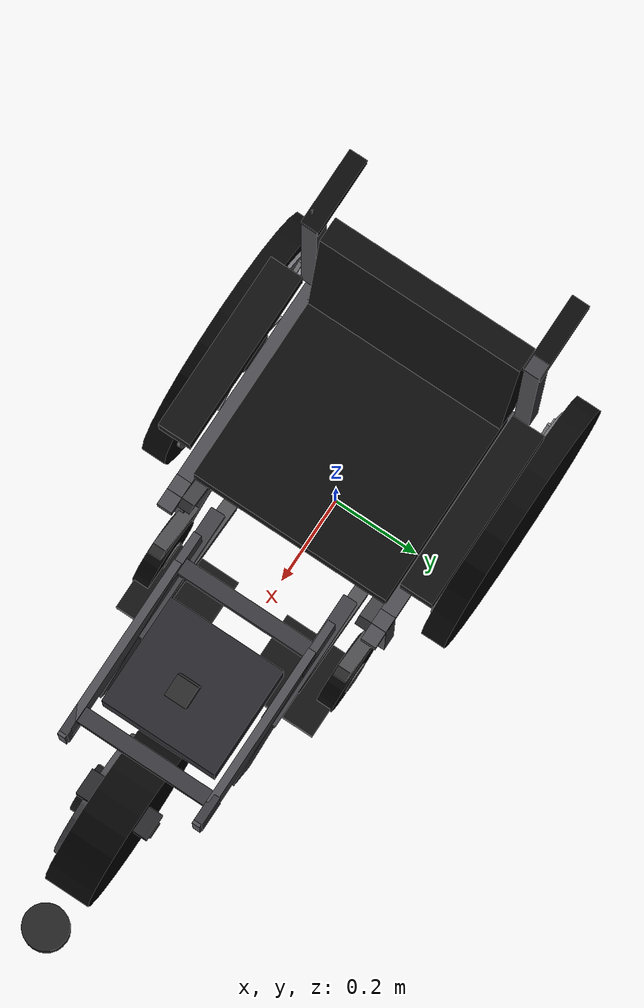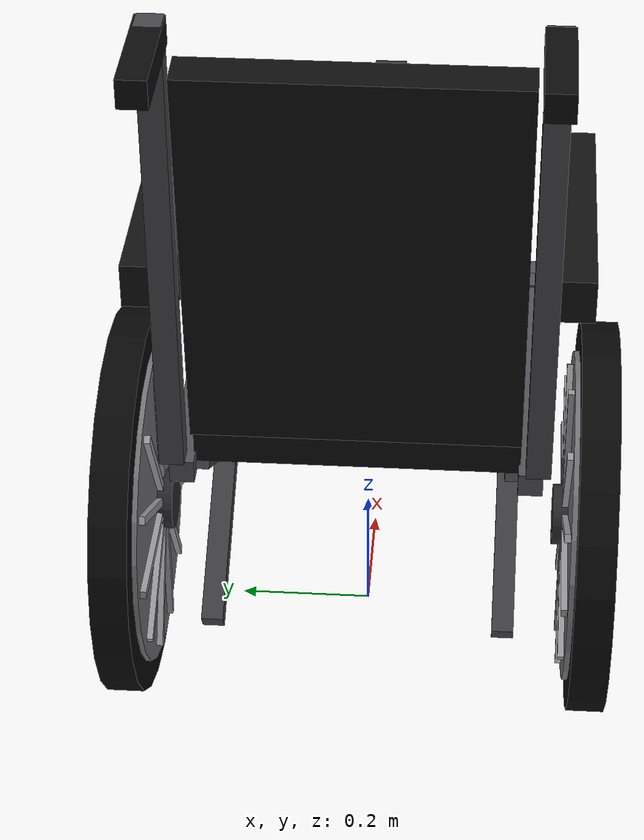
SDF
<?xml version="1.0"?>

<sdf version="1.10">
  <model name="wheelchair">

    <pose>0 0 0 0 0 0</pose>

    <link name="base_link">

      <inertial>
        <pose>-0.05 0 0.40 0 0 0</pose>

        <mass>40.0</mass>

        <inertia>
          <ixx>3.0</ixx>
          <iyy>4.0</iyy>
          <izz>4.0</izz>
          <ixy>0.0</ixy>
          <ixz>0.0</ixz>
          <iyz>0.0</iyz>
        </inertia>
      </inertial>

      <!-- Wheelchair collisions -->

      <collision name="wheelchair_lower_collision">
        <pose>-0.02 0 0.34 0 0 0</pose>

        <geometry>
          <box>
            <size>0.62 0.48 0.10</size>
          </box>
        </geometry>
      </collision>

      <collision name="seat_collision">
        <pose>-0.05 0 0.51 0 0 0</pose>

        <geometry>
          <box>
            <size>0.44 0.46 0.08</size>
          </box>
        </geometry>
      </collision>

      <collision name="backrest_collision">
        <pose>-0.29 0 0.82 0 0 0</pose>

        <geometry>
          <box>
            <size>0.065 0.46 0.58</size>
          </box>
        </geometry>
      </collision>

      <!-- SWAN collision remains simple -->

      <collision name="swan_body_collision">
        <pose>0.52 0 0.40 0 0 0</pose>

        <geometry>
          <box>
            <size>0.38 0.31 0.15</size>
          </box>
        </geometry>
      </collision>

      <collision name="swan_connector_collision">
        <pose>0.32 0 0.35 0 0 0</pose>

        <geometry>
          <box>
            <size>0.24 0.20 0.07</size>
          </box>
        </geometry>
      </collision>

      <!-- Wheelchair seat -->

      <visual name="seat_visual">
        <pose>-0.05 0 0.51 0 0 0</pose>

        <geometry>
          <box>
            <size>0.44 0.46 0.075</size>
          </box>
        </geometry>

        <material>
          <ambient>0.025 0.025 0.025 1</ambient>
          <diffuse>0.055 0.055 0.055 1</diffuse>
        </material>
      </visual>

      <!-- Wheelchair backrest -->

      <visual name="backrest_visual">
        <pose>-0.29 0 0.83 0 -0.07 0</pose>

        <geometry>
          <box>
            <size>0.055 0.46 0.58</size>
          </box>
        </geometry>

        <material>
          <ambient>0.025 0.025 0.025 1</ambient>
          <diffuse>0.055 0.055 0.055 1</diffuse>
        </material>
      </visual>

      <!-- Back posts -->

      <visual name="back_left_post">
        <pose>-0.30 0.255 0.84 0 0 0</pose>

        <geometry>
          <box>
            <size>0.035 0.035 0.68</size>
          </box>
        </geometry>

        <material>
          <ambient>0.15 0.15 0.15 1</ambient>
          <diffuse>0.28 0.28 0.30 1</diffuse>
        </material>
      </visual>

      <visual name="back_right_post">
        <pose>-0.30 -0.255 0.84 0 0 0</pose>

        <geometry>
          <box>
            <size>0.035 0.035 0.68</size>
          </box>
        </geometry>

        <material>
          <ambient>0.15 0.15 0.15 1</ambient>
          <diffuse>0.28 0.28 0.30 1</diffuse>
        </material>
      </visual>

      <!-- Push handles -->

      <visual name="left_push_handle">
        <pose>-0.37 0.255 1.16 0 0 0</pose>

        <geometry>
          <box>
            <size>0.17 0.04 0.04</size>
          </box>
        </geometry>

        <material>
          <ambient>0.025 0.025 0.025 1</ambient>
          <diffuse>0.05 0.05 0.05 1</diffuse>
        </material>
      </visual>

      <visual name="right_push_handle">
        <pose>-0.37 -0.255 1.16 0 0 0</pose>

        <geometry>
          <box>
            <size>0.17 0.04 0.04</size>
          </box>
        </geometry>

        <material>
          <ambient>0.025 0.025 0.025 1</ambient>
          <diffuse>0.05 0.05 0.05 1</diffuse>
        </material>
      </visual>

      <!-- Armrests -->

      <visual name="left_armrest">
        <pose>-0.05 0.285 0.75 0 0 0</pose>

        <geometry>
          <box>
            <size>0.40 0.075 0.065</size>
          </box>
        </geometry>

        <material>
          <ambient>0.03 0.03 0.03 1</ambient>
          <diffuse>0.07 0.07 0.07 1</diffuse>
        </material>
      </visual>

      <visual name="right_armrest">
        <pose>-0.05 -0.285 0.75 0 0 0</pose>

        <geometry>
          <box>
            <size>0.40 0.075 0.065</size>
          </box>
        </geometry>

        <material>
          <ambient>0.03 0.03 0.03 1</ambient>
          <diffuse>0.07 0.07 0.07 1</diffuse>
        </material>
      </visual>

      <visual name="left_armrest_support">
        <pose>0.08 0.285 0.64 0 0 0</pose>

        <geometry>
          <box>
            <size>0.035 0.035 0.24</size>
          </box>
        </geometry>

        <material>
          <ambient>0.12 0.12 0.12 1</ambient>
          <diffuse>0.25 0.25 0.26 1</diffuse>
        </material>
      </visual>

      <visual name="right_armrest_support">
        <pose>0.08 -0.285 0.64 0 0 0</pose>

        <geometry>
          <box>
            <size>0.035 0.035 0.24</size>
          </box>
        </geometry>

        <material>
          <ambient>0.12 0.12 0.12 1</ambient>
          <diffuse>0.25 0.25 0.26 1</diffuse>
        </material>
      </visual>

      <!-- Wheelchair frame -->

      <visual name="left_upper_frame">
        <pose>-0.02 0.245 0.47 0 0 0</pose>

        <geometry>
          <box>
            <size>0.55 0.035 0.035</size>
          </box>
        </geometry>

        <material>
          <ambient>0.18 0.18 0.18 1</ambient>
          <diffuse>0.32 0.32 0.34 1</diffuse>
        </material>
      </visual>

      <visual name="right_upper_frame">
        <pose>-0.02 -0.245 0.47 0 0 0</pose>

        <geometry>
          <box>
            <size>0.55 0.035 0.035</size>
          </box>
        </geometry>

        <material>
          <ambient>0.18 0.18 0.18 1</ambient>
          <diffuse>0.32 0.32 0.34 1</diffuse>
        </material>
      </visual>

      <visual name="left_front_frame">
        <pose>0.20 0.245 0.32 0 0 0</pose>

        <geometry>
          <box>
            <size>0.035 0.035 0.34</size>
          </box>
        </geometry>

        <material>
          <ambient>0.18 0.18 0.18 1</ambient>
          <diffuse>0.32 0.32 0.34 1</diffuse>
        </material>
      </visual>

      <visual name="right_front_frame">
        <pose>0.20 -0.245 0.32 0 0 0</pose>

        <geometry>
          <box>
            <size>0.035 0.035 0.34</size>
          </box>
        </geometry>

        <material>
          <ambient>0.18 0.18 0.18 1</ambient>
          <diffuse>0.32 0.32 0.34 1</diffuse>
        </material>
      </visual>

      <!-- Wheelchair folding braces -->

      <visual name="left_cross_frame_1">
        <pose>-0.02 0.225 0.32 0 0.56 0</pose>

        <geometry>
          <box>
            <size>0.58 0.032 0.032</size>
          </box>
        </geometry>

        <material>
          <ambient>0.10 0.10 0.10 1</ambient>
          <diffuse>0.24 0.24 0.25 1</diffuse>
        </material>
      </visual>

      <visual name="left_cross_frame_2">
        <pose>-0.02 0.215 0.32 0 -0.56 0</pose>

        <geometry>
          <box>
            <size>0.58 0.032 0.032</size>
          </box>
        </geometry>

        <material>
          <ambient>0.10 0.10 0.10 1</ambient>
          <diffuse>0.24 0.24 0.25 1</diffuse>
        </material>
      </visual>

      <visual name="right_cross_frame_1">
        <pose>-0.02 -0.225 0.32 0 0.56 0</pose>

        <geometry>
          <box>
            <size>0.58 0.032 0.032</size>
          </box>
        </geometry>

        <material>
          <ambient>0.10 0.10 0.10 1</ambient>
          <diffuse>0.24 0.24 0.25 1</diffuse>
        </material>
      </visual>

      <visual name="right_cross_frame_2">
        <pose>-0.02 -0.215 0.32 0 -0.56 0</pose>

        <geometry>
          <box>
            <size>0.58 0.032 0.032</size>
          </box>
        </geometry>

        <material>
          <ambient>0.10 0.10 0.10 1</ambient>
          <diffuse>0.24 0.24 0.25 1</diffuse>
        </material>
      </visual>

      <!-- Footrests -->

      <visual name="left_footrest_support">
        <pose>0.27 0.16 0.27 0 -0.40 0</pose>

        <geometry>
          <box>
            <size>0.27 0.032 0.032</size>
          </box>
        </geometry>

        <material>
          <ambient>0.15 0.15 0.15 1</ambient>
          <diffuse>0.30 0.30 0.31 1</diffuse>
        </material>
      </visual>

      <visual name="right_footrest_support">
        <pose>0.27 -0.16 0.27 0 -0.40 0</pose>

        <geometry>
          <box>
            <size>0.27 0.032 0.032</size>
          </box>
        </geometry>

        <material>
          <ambient>0.15 0.15 0.15 1</ambient>
          <diffuse>0.30 0.30 0.31 1</diffuse>
        </material>
      </visual>

      <visual name="left_footplate">
        <pose>0.36 0.15 0.18 0 0 0</pose>

        <geometry>
          <box>
            <size>0.18 0.18 0.025</size>
          </box>
        </geometry>

        <material>
          <ambient>0.03 0.03 0.03 1</ambient>
          <diffuse>0.08 0.08 0.08 1</diffuse>
        </material>
      </visual>

      <visual name="right_footplate">
        <pose>0.36 -0.15 0.18 0 0 0</pose>

        <geometry>
          <box>
            <size>0.18 0.18 0.025</size>
          </box>
        </geometry>

        <material>
          <ambient>0.03 0.03 0.03 1</ambient>
          <diffuse>0.08 0.08 0.08 1</diffuse>
        </material>
      </visual>

      <!-- Folded wheelchair casters -->

      <visual name="folded_left_caster_fork">
        <pose>0.25 0.225 0.24 0 -0.70 0</pose>

        <geometry>
          <box>
            <size>0.18 0.030 0.030</size>
          </box>
        </geometry>

        <material>
          <ambient>0.13 0.13 0.13 1</ambient>
          <diffuse>0.28 0.28 0.29 1</diffuse>
        </material>
      </visual>

      <visual name="folded_left_caster_tire">
        <pose>0.30 0.225 0.175 1.5708 0 0</pose>

        <geometry>
          <cylinder>
            <radius>0.085</radius>
            <length>0.038</length>
          </cylinder>
        </geometry>

        <material>
          <ambient>0.015 0.015 0.015 1</ambient>
          <diffuse>0.035 0.035 0.035 1</diffuse>
        </material>
      </visual>

      <visual name="folded_left_caster_hub">
        <pose>0.30 0.225 0.175 1.5708 0 0</pose>

        <geometry>
          <cylinder>
            <radius>0.035</radius>
            <length>0.045</length>
          </cylinder>
        </geometry>

        <material>
          <ambient>0.20 0.20 0.20 1</ambient>
          <diffuse>0.35 0.35 0.36 1</diffuse>
        </material>
      </visual>

      <visual name="folded_right_caster_fork">
        <pose>0.25 -0.225 0.24 0 -0.70 0</pose>

        <geometry>
          <box>
            <size>0.18 0.030 0.030</size>
          </box>
        </geometry>

        <material>
          <ambient>0.13 0.13 0.13 1</ambient>
          <diffuse>0.28 0.28 0.29 1</diffuse>
        </material>
      </visual>

      <visual name="folded_right_caster_tire">
        <pose>0.30 -0.225 0.175 1.5708 0 0</pose>

        <geometry>
          <cylinder>
            <radius>0.085</radius>
            <length>0.038</length>
          </cylinder>
        </geometry>

        <material>
          <ambient>0.015 0.015 0.015 1</ambient>
          <diffuse>0.035 0.035 0.035 1</diffuse>
        </material>
      </visual>

      <visual name="folded_right_caster_hub">
        <pose>0.30 -0.225 0.175 1.5708 0 0</pose>

        <geometry>
          <cylinder>
            <radius>0.035</radius>
            <length>0.045</length>
          </cylinder>
        </geometry>

        <material>
          <ambient>0.20 0.20 0.20 1</ambient>
          <diffuse>0.35 0.35 0.36 1</diffuse>
        </material>
      </visual>

      <!-- SWAN connection arms -->

      <visual name="swan_left_connection_arm">
        <pose>0.34 0.16 0.37 0 0 0</pose>

        <geometry>
          <box>
            <size>0.30 0.032 0.040</size>
          </box>
        </geometry>

        <material>
          <ambient>0.11 0.11 0.115 1</ambient>
          <diffuse>0.27 0.27 0.29 1</diffuse>
        </material>
      </visual>

      <visual name="swan_right_connection_arm">
        <pose>0.34 -0.16 0.37 0 0 0</pose>

        <geometry>
          <box>
            <size>0.30 0.032 0.040</size>
          </box>
        </geometry>

        <material>
          <ambient>0.11 0.11 0.115 1</ambient>
          <diffuse>0.27 0.27 0.29 1</diffuse>
        </material>
      </visual>

      <!-- SWAN upper side plates -->

      <visual name="swan_left_upper_plate">
        <pose>0.54 0.161 0.445 0 0 0</pose>

        <geometry>
          <box>
            <size>0.42 0.018 0.13</size>
          </box>
        </geometry>

        <material>
          <ambient>0.15 0.15 0.155 1</ambient>
          <diffuse>0.33 0.33 0.35 1</diffuse>
          <specular>0.18 0.18 0.18 1</specular>
        </material>
      </visual>

      <visual name="swan_right_upper_plate">
        <pose>0.54 -0.161 0.445 0 0 0</pose>

        <geometry>
          <box>
            <size>0.42 0.018 0.13</size>
          </box>
        </geometry>

        <material>
          <ambient>0.15 0.15 0.155 1</ambient>
          <diffuse>0.33 0.33 0.35 1</diffuse>
          <specular>0.18 0.18 0.18 1</specular>
        </material>
      </visual>

      <!-- SWAN diagonal lower plates -->

      <visual name="swan_left_diagonal_plate">
        <pose>0.47 0.161 0.345 0 0.55 0</pose>

        <geometry>
          <box>
            <size>0.31 0.018 0.105</size>
          </box>
        </geometry>

        <material>
          <ambient>0.13 0.13 0.135 1</ambient>
          <diffuse>0.30 0.30 0.32 1</diffuse>
          <specular>0.15 0.15 0.15 1</specular>
        </material>
      </visual>

      <visual name="swan_right_diagonal_plate">
        <pose>0.47 -0.161 0.345 0 0.55 0</pose>

        <geometry>
          <box>
            <size>0.31 0.018 0.105</size>
          </box>
        </geometry>

        <material>
          <ambient>0.13 0.13 0.135 1</ambient>
          <diffuse>0.30 0.30 0.32 1</diffuse>
          <specular>0.15 0.15 0.15 1</specular>
        </material>
      </visual>

      <!-- SWAN rear side plates -->

      <visual name="swan_left_rear_plate">
        <pose>0.32 0.161 0.405 0 0 0</pose>

        <geometry>
          <box>
            <size>0.12 0.018 0.17</size>
          </box>
        </geometry>

        <material>
          <ambient>0.14 0.14 0.145 1</ambient>
          <diffuse>0.31 0.31 0.33 1</diffuse>
        </material>
      </visual>

      <visual name="swan_right_rear_plate">
        <pose>0.32 -0.161 0.405 0 0 0</pose>

        <geometry>
          <box>
            <size>0.12 0.018 0.17</size>
          </box>
        </geometry>

        <material>
          <ambient>0.14 0.14 0.145 1</ambient>
          <diffuse>0.31 0.31 0.33 1</diffuse>
        </material>
      </visual>

      <!-- SWAN front short plates -->

      <visual name="swan_left_front_plate">
        <pose>0.71 0.161 0.43 0 0 0</pose>

        <geometry>
          <box>
            <size>0.065 0.018 0.16</size>
          </box>
        </geometry>

        <material>
          <ambient>0.11 0.11 0.115 1</ambient>
          <diffuse>0.25 0.25 0.27 1</diffuse>
        </material>
      </visual>

      <visual name="swan_right_front_plate">
        <pose>0.71 -0.161 0.43 0 0 0</pose>

        <geometry>
          <box>
            <size>0.065 0.018 0.16</size>
          </box>
        </geometry>

        <material>
          <ambient>0.11 0.11 0.115 1</ambient>
          <diffuse>0.25 0.25 0.27 1</diffuse>
        </material>
      </visual>

      <!-- SWAN small center enclosure -->

      <visual name="swan_center_box">
        <pose>0.52 0 0.435 0 0 0</pose>

        <geometry>
          <box>
            <size>0.25 0.27 0.11</size>
          </box>
        </geometry>

        <material>
          <ambient>0.075 0.075 0.08 1</ambient>
          <diffuse>0.17 0.17 0.19 1</diffuse>
          <specular>0.12 0.12 0.12 1</specular>
        </material>
      </visual>

      <!-- SWAN front cross member -->

      <visual name="swan_front_cross_member">
        <pose>0.69 0 0.48 0 0 0</pose>

        <geometry>
          <box>
            <size>0.035 0.33 0.035</size>
          </box>
        </geometry>

        <material>
          <ambient>0.10 0.10 0.105 1</ambient>
          <diffuse>0.24 0.24 0.26 1</diffuse>
        </material>
      </visual>

      <!-- SWAN rear cross member -->

      <visual name="swan_rear_cross_member">
        <pose>0.33 0 0.46 0 0 0</pose>

        <geometry>
          <box>
            <size>0.035 0.33 0.035</size>
          </box>
        </geometry>

        <material>
          <ambient>0.10 0.10 0.105 1</ambient>
          <diffuse>0.24 0.24 0.26 1</diffuse>
        </material>
      </visual>

    </link>

    <!-- Left passive rear wheel -->

    <link name="left_drive_wheel">

      <pose>-0.13 0.34 0.29 1.5708 0 0</pose>

      <inertial>
        <mass>6.0</mass>

        <inertia>
          <ixx>0.13</ixx>
          <iyy>0.25</iyy>
          <izz>0.13</izz>
          <ixy>0</ixy>
          <ixz>0</ixz>
          <iyz>0</iyz>
        </inertia>
      </inertial>

      <collision name="left_rear_wheel_collision">

        <geometry>
          <cylinder>
            <radius>0.29</radius>
            <length>0.055</length>
          </cylinder>
        </geometry>

        <surface>
          <friction>
            <ode>
              <mu>0.70</mu>
              <mu2>0.45</mu2>
            </ode>
          </friction>
        </surface>

      </collision>

      <visual name="left_tire">

        <geometry>
          <cylinder>
            <radius>0.29</radius>
            <length>0.055</length>
          </cylinder>
        </geometry>

        <material>
          <ambient>0.012 0.012 0.012 1</ambient>
          <diffuse>0.03 0.03 0.03 1</diffuse>
        </material>

      </visual>

      <visual name="left_rim">
        <pose>0 0 0.030 0 0 0</pose>

        <geometry>
          <cylinder>
            <radius>0.245</radius>
            <length>0.010</length>
          </cylinder>
        </geometry>

        <material>
          <ambient>0.22 0.22 0.22 1</ambient>
          <diffuse>0.45 0.45 0.47 1</diffuse>
          <specular>0.35 0.35 0.35 1</specular>
        </material>

      </visual>

      <visual name="left_hub">
        <pose>0 0 0.040 0 0 0</pose>

        <geometry>
          <cylinder>
            <radius>0.045</radius>
            <length>0.035</length>
          </cylinder>
        </geometry>

        <material>
          <ambient>0.08 0.08 0.08 1</ambient>
          <diffuse>0.16 0.16 0.17 1</diffuse>
        </material>

      </visual>

      <visual name="left_spoke_0">
        <pose>0 0 0.038 0 0 0</pose>

        <geometry>
          <box>
            <size>0.45 0.012 0.012</size>
          </box>
        </geometry>

        <material>
          <ambient>0.40 0.40 0.40 1</ambient>
          <diffuse>0.60 0.60 0.62 1</diffuse>
        </material>
      </visual>

      <visual name="left_spoke_30">
        <pose>0 0 0.038 0 0 0.5236</pose>

        <geometry>
          <box>
            <size>0.45 0.012 0.012</size>
          </box>
        </geometry>

        <material>
          <ambient>0.40 0.40 0.40 1</ambient>
          <diffuse>0.60 0.60 0.62 1</diffuse>
        </material>
      </visual>

      <visual name="left_spoke_60">
        <pose>0 0 0.038 0 0 1.0472</pose>

        <geometry>
          <box>
            <size>0.45 0.012 0.012</size>
          </box>
        </geometry>

        <material>
          <ambient>0.40 0.40 0.40 1</ambient>
          <diffuse>0.60 0.60 0.62 1</diffuse>
        </material>
      </visual>

      <visual name="left_spoke_90">
        <pose>0 0 0.038 0 0 1.5708</pose>

        <geometry>
          <box>
            <size>0.45 0.012 0.012</size>
          </box>
        </geometry>

        <material>
          <ambient>0.40 0.40 0.40 1</ambient>
          <diffuse>0.60 0.60 0.62 1</diffuse>
        </material>
      </visual>

      <visual name="left_spoke_120">
        <pose>0 0 0.038 0 0 2.0944</pose>

        <geometry>
          <box>
            <size>0.45 0.012 0.012</size>
          </box>
        </geometry>

        <material>
          <ambient>0.40 0.40 0.40 1</ambient>
          <diffuse>0.60 0.60 0.62 1</diffuse>
        </material>
      </visual>

      <visual name="left_spoke_150">
        <pose>0 0 0.038 0 0 2.6180</pose>

        <geometry>
          <box>
            <size>0.45 0.012 0.012</size>
          </box>
        </geometry>

        <material>
          <ambient>0.40 0.40 0.40 1</ambient>
          <diffuse>0.60 0.60 0.62 1</diffuse>
        </material>
      </visual>

    </link>

    <joint name="left_drive_wheel_joint" type="revolute">

      <parent>base_link</parent>
      <child>left_drive_wheel</child>

      <axis>

        <xyz expressed_in="__model__">0 1 0</xyz>

        <limit>
          <lower>-1e16</lower>
          <upper>1e16</upper>
          <effort>50</effort>
          <velocity>30</velocity>
        </limit>

        <dynamics>
          <damping>0.025</damping>
          <friction>0.0</friction>
        </dynamics>

      </axis>

    </joint>

    <!-- Right passive rear wheel -->

    <link name="right_drive_wheel">

      <pose>-0.13 -0.34 0.29 1.5708 0 0</pose>

      <inertial>
        <mass>6.0</mass>

        <inertia>
          <ixx>0.13</ixx>
          <iyy>0.25</iyy>
          <izz>0.13</izz>
          <ixy>0</ixy>
          <ixz>0</ixz>
          <iyz>0</iyz>
        </inertia>
      </inertial>

      <collision name="right_rear_wheel_collision">

        <geometry>
          <cylinder>
            <radius>0.29</radius>
            <length>0.055</length>
          </cylinder>
        </geometry>

        <surface>
          <friction>
            <ode>
              <mu>0.70</mu>
              <mu2>0.45</mu2>
            </ode>
          </friction>
        </surface>

      </collision>

      <visual name="right_tire">

        <geometry>
          <cylinder>
            <radius>0.29</radius>
            <length>0.055</length>
          </cylinder>
        </geometry>

        <material>
          <ambient>0.012 0.012 0.012 1</ambient>
          <diffuse>0.03 0.03 0.03 1</diffuse>
        </material>

      </visual>

      <visual name="right_rim">
        <pose>0 0 -0.030 0 0 0</pose>

        <geometry>
          <cylinder>
            <radius>0.245</radius>
            <length>0.010</length>
          </cylinder>
        </geometry>

        <material>
          <ambient>0.22 0.22 0.22 1</ambient>
          <diffuse>0.45 0.45 0.47 1</diffuse>
          <specular>0.35 0.35 0.35 1</specular>
        </material>

      </visual>

      <visual name="right_hub">
        <pose>0 0 -0.040 0 0 0</pose>

        <geometry>
          <cylinder>
            <radius>0.045</radius>
            <length>0.035</length>
          </cylinder>
        </geometry>

        <material>
          <ambient>0.08 0.08 0.08 1</ambient>
          <diffuse>0.16 0.16 0.17 1</diffuse>
        </material>

      </visual>

      <visual name="right_spoke_0">
        <pose>0 0 -0.038 0 0 0</pose>

        <geometry>
          <box>
            <size>0.45 0.012 0.012</size>
          </box>
        </geometry>

        <material>
          <ambient>0.40 0.40 0.40 1</ambient>
          <diffuse>0.60 0.60 0.62 1</diffuse>
        </material>
      </visual>

      <visual name="right_spoke_30">
        <pose>0 0 -0.038 0 0 0.5236</pose>

        <geometry>
          <box>
            <size>0.45 0.012 0.012</size>
          </box>
        </geometry>

        <material>
          <ambient>0.40 0.40 0.40 1</ambient>
          <diffuse>0.60 0.60 0.62 1</diffuse>
        </material>
      </visual>

      <visual name="right_spoke_60">
        <pose>0 0 -0.038 0 0 1.0472</pose>

        <geometry>
          <box>
            <size>0.45 0.012 0.012</size>
          </box>
        </geometry>

        <material>
          <ambient>0.40 0.40 0.40 1</ambient>
          <diffuse>0.60 0.60 0.62 1</diffuse>
        </material>
      </visual>

      <visual name="right_spoke_90">
        <pose>0 0 -0.038 0 0 1.5708</pose>

        <geometry>
          <box>
            <size>0.45 0.012 0.012</size>
          </box>
        </geometry>

        <material>
          <ambient>0.40 0.40 0.40 1</ambient>
          <diffuse>0.60 0.60 0.62 1</diffuse>
        </material>
      </visual>

      <visual name="right_spoke_120">
        <pose>0 0 -0.038 0 0 2.0944</pose>

        <geometry>
          <box>
            <size>0.45 0.012 0.012</size>
          </box>
        </geometry>

        <material>
          <ambient>0.40 0.40 0.40 1</ambient>
          <diffuse>0.60 0.60 0.62 1</diffuse>
        </material>
      </visual>

      <visual name="right_spoke_150">
        <pose>0 0 -0.038 0 0 2.6180</pose>

        <geometry>
          <box>
            <size>0.45 0.012 0.012</size>
          </box>
        </geometry>

        <material>
          <ambient>0.40 0.40 0.40 1</ambient>
          <diffuse>0.60 0.60 0.62 1</diffuse>
        </material>
      </visual>

    </link>

    <joint name="right_drive_wheel_joint" type="revolute">

      <parent>base_link</parent>
      <child>right_drive_wheel</child>

      <axis>

        <xyz expressed_in="__model__">0 1 0</xyz>

        <limit>
          <lower>-1e16</lower>
          <upper>1e16</upper>
          <effort>50</effort>
          <velocity>30</velocity>
        </limit>

        <dynamics>
          <damping>0.025</damping>
          <friction>0.0</friction>
        </dynamics>

      </axis>

    </joint>

    <!-- SWAN steering fork -->

    <link name="swan_steering_fork">

      <pose>0.79 0 0.34 0 0 0</pose>

      <inertial>
        <mass>1.5</mass>

        <inertia>
          <ixx>0.018</ixx>
          <iyy>0.018</iyy>
          <izz>0.014</izz>
          <ixy>0</ixy>
          <ixz>0</ixz>
          <iyz>0</iyz>
        </inertia>
      </inertial>

      <!-- No tall steering tube visual -->

      <visual name="fork_crown">
        <pose>0 0 -0.015 0 0 0</pose>

        <geometry>
          <box>
            <size>0.060 0.17 0.040</size>
          </box>
        </geometry>

        <material>
          <ambient>0.07 0.07 0.075 1</ambient>
          <diffuse>0.17 0.17 0.18 1</diffuse>
        </material>
      </visual>

      <visual name="left_fork_leg">
        <pose>-0.005 0.065 -0.105 0 0 0</pose>

        <geometry>
          <box>
            <size>0.035 0.028 0.18</size>
          </box>
        </geometry>

        <material>
          <ambient>0.08 0.08 0.085 1</ambient>
          <diffuse>0.19 0.19 0.20 1</diffuse>
        </material>
      </visual>

      <visual name="right_fork_leg">
        <pose>-0.005 -0.065 -0.105 0 0 0</pose>

        <geometry>
          <box>
            <size>0.035 0.028 0.18</size>
          </box>
        </geometry>

        <material>
          <ambient>0.08 0.08 0.085 1</ambient>
          <diffuse>0.19 0.19 0.20 1</diffuse>
        </material>
      </visual>

    </link>

    <joint name="front_steering_joint" type="revolute">

      <parent>base_link</parent>
      <child>swan_steering_fork</child>

      <axis>

        <xyz expressed_in="__model__">0 0 1</xyz>

        <limit>
          <lower>-1.5708</lower>
          <upper>1.5708</upper>
          <effort>150</effort>
          <velocity>4.0</velocity>
        </limit>

        <dynamics>
          <damping>0.8</damping>
          <friction>0.10</friction>
        </dynamics>

      </axis>

    </joint>

    <!-- SWAN drive wheel -->

    <link name="front_drive_wheel">

      <pose>0.79 0 0.18 1.5708 0 0</pose>

      <inertial>
        <mass>7.0</mass>

        <inertia>
          <ixx>0.145</ixx>
          <iyy>0.280</iyy>
          <izz>0.145</izz>
          <ixy>0</ixy>
          <ixz>0</ixz>
          <iyz>0</iyz>
        </inertia>
      </inertial>

      <collision name="front_drive_wheel_collision">

        <geometry>
          <cylinder>
            <radius>0.20</radius>
            <length>0.105</length>
          </cylinder>
        </geometry>

        <surface>
          <friction>
            <ode>
              <mu>1.60</mu>
              <mu2>1.30</mu2>
            </ode>
          </friction>
        </surface>

      </collision>

      <visual name="front_tire">

        <geometry>
          <cylinder>
            <radius>0.20</radius>
            <length>0.105</length>
          </cylinder>
        </geometry>

        <material>
          <ambient>0.010 0.010 0.010 1</ambient>
          <diffuse>0.025 0.025 0.025 1</diffuse>
        </material>

      </visual>

      <visual name="front_motor_rim">
        <pose>0 0 0.058 0 0 0</pose>

        <geometry>
          <cylinder>
            <radius>0.145</radius>
            <length>0.020</length>
          </cylinder>
        </geometry>

        <material>
          <ambient>0.13 0.13 0.13 1</ambient>
          <diffuse>0.28 0.28 0.30 1</diffuse>
          <specular>0.20 0.20 0.20 1</specular>
        </material>

      </visual>

      <visual name="front_motor_hub">
        <pose>0 0 0.072 0 0 0</pose>

        <geometry>
          <cylinder>
            <radius>0.055</radius>
            <length>0.035</length>
          </cylinder>
        </geometry>

        <material>
          <ambient>0.04 0.04 0.04 1</ambient>
          <diffuse>0.09 0.09 0.10 1</diffuse>
        </material>

      </visual>

    </link>

    <joint name="front_drive_wheel_joint" type="revolute">

      <parent>swan_steering_fork</parent>
      <child>front_drive_wheel</child>

      <axis>

        <xyz expressed_in="swan_steering_fork">0 1 0</xyz>

        <limit>
          <lower>-1e16</lower>
          <upper>1e16</upper>
          <effort>300</effort>
          <velocity>35</velocity>
        </limit>

        <dynamics>
          <damping>0.03</damping>
          <friction>0.0</friction>
        </dynamics>

      </axis>

    </joint>

    <!-- LiDAR -->

    <link name="lidar_link">

      <pose>1.07 0 0.10 0 0 0</pose>

      <inertial>
        <mass>0.5</mass>

        <inertia>
          <ixx>0.001</ixx>
          <iyy>0.001</iyy>
          <izz>0.001</izz>
          <ixy>0.0</ixy>
          <ixz>0.0</ixz>
          <iyz>0.0</iyz>
        </inertia>
      </inertial>

      <collision name="lidar_collision">

        <geometry>
          <cylinder>
            <radius>0.05</radius>
            <length>0.06</length>
          </cylinder>
        </geometry>

      </collision>

      <visual name="lidar_visual">

        <geometry>
          <cylinder>
            <radius>0.05</radius>
            <length>0.06</length>
          </cylinder>
        </geometry>

        <material>
          <ambient>0.05 0.05 0.05 1</ambient>
          <diffuse>0.15 0.15 0.15 1</diffuse>
        </material>

      </visual>

      <sensor name="lidar_sensor" type="gpu_lidar">

        <pose>0 0 0.03 0 0 0</pose>

        <topic>/model/wheelchair/scan</topic>

        <update_rate>10</update_rate>
        <always_on>true</always_on>
        <visualize>true</visualize>

        <lidar>

          <scan>
            <horizontal>
              <samples>720</samples>
              <resolution>1</resolution>
              <min_angle>-3.14159265</min_angle>
              <max_angle>3.14159265</max_angle>
            </horizontal>
          </scan>

          <range>
            <min>0.12</min>
            <max>12.0</max>
            <resolution>0.01</resolution>
          </range>

          <noise>
            <type>gaussian</type>
            <mean>0.0</mean>
            <stddev>0.01</stddev>
          </noise>

        </lidar>

      </sensor>

    </link>

    <joint name="lidar_joint" type="fixed">
      <parent>base_link</parent>
      <child>lidar_link</child>
    </joint>

    <!-- Camera -->

    <link name="camera_link">

      <pose>0.55 0 0.64 0 0.17 0</pose>

      <inertial>
        <mass>0.1</mass>

        <inertia>
          <ixx>0.0001</ixx>
          <iyy>0.0001</iyy>
          <izz>0.0001</izz>
          <ixy>0.0</ixy>
          <ixz>0.0</ixz>
          <iyz>0.0</iyz>
        </inertia>
      </inertial>

      <visual name="camera_visual">

        <geometry>
          <box>
            <size>0.05 0.05 0.05</size>
          </box>
        </geometry>

        <material>
          <ambient>0.1 0.1 0.1 1</ambient>
          <diffuse>0.2 0.2 0.2 1</diffuse>
        </material>

      </visual>

      <sensor name="camera_sensor" type="camera">

        <topic>/camera</topic>

        <always_on>true</always_on>
        <update_rate>10.0</update_rate>
        <visualize>false</visualize>

        <camera>

          <horizontal_fov>1.047</horizontal_fov>

          <image>
            <width>320</width>
            <height>240</height>
            <format>R8G8B8</format>
          </image>

          <clip>
            <near>0.1</near>
            <far>100</far>
          </clip>

        </camera>

      </sensor>

    </link>

    <joint name="camera_joint" type="fixed">
      <parent>base_link</parent>
      <child>camera_link</child>
    </joint>

    <!-- Odometry publisher -->
    <plugin
      filename="gz-sim-odometry-publisher-system"
      name="gz::sim::systems::OdometryPublisher">

      <odom_frame>odom</odom_frame>
      <robot_base_frame>base_link</robot_base_frame>

      <odom_topic>/model/wheelchair/odometry</odom_topic>
      <tf_topic>/model/wheelchair/tf</tf_topic>

      <odom_publish_frequency>30</odom_publish_frequency>
      <dimensions>2</dimensions>

    </plugin>

    <!-- Front drive controller -->

    <plugin
      filename="gz-sim-joint-controller-system"
      name="gz::sim::systems::JointController">

      <joint_name>front_drive_wheel_joint</joint_name>
      <topic>/model/wheelchair/front_drive/cmd_vel</topic>

    </plugin>

    <!-- Steering controller -->

    <plugin
      filename="gz-sim-joint-position-controller-system"
      name="gz::sim::systems::JointPositionController">

      <joint_name>front_steering_joint</joint_name>
      <topic>/model/wheelchair/front_steering/cmd_pos</topic>

      <p_gain>25.0</p_gain>
      <i_gain>0.0</i_gain>
      <d_gain>3.0</d_gain>

      <cmd_max>150</cmd_max>
      <cmd_min>-150</cmd_min>

      <initial_position>0.0</initial_position>

    </plugin>

    <!-- Joint states -->

    <plugin
      filename="gz-sim-joint-state-publisher-system"
      name="gz::sim::systems::JointStatePublisher">

      <joint_name>front_steering_joint</joint_name>
      <joint_name>front_drive_wheel_joint</joint_name>
      <joint_name>left_drive_wheel_joint</joint_name>
      <joint_name>right_drive_wheel_joint</joint_name>

    </plugin>

  </model>
</sdf>
